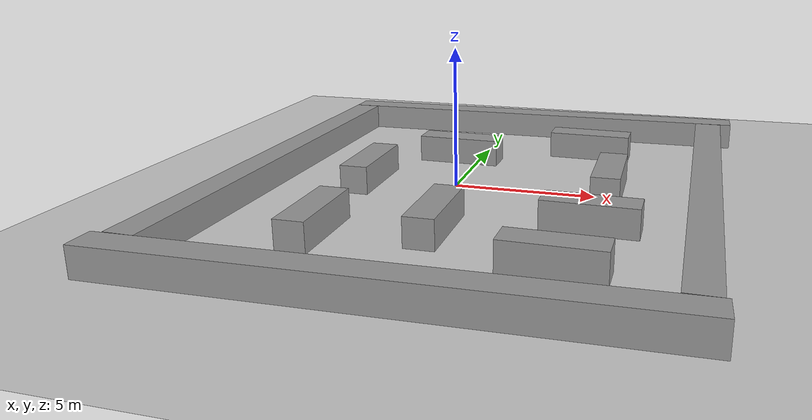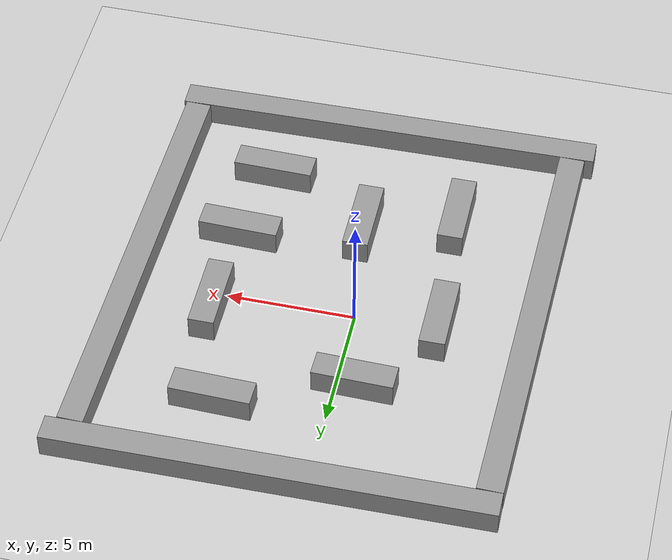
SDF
<sdf version="1.7">
 <world name="default">
  <light name="sun" type="directional">
   <pose>0 0 10 0 -0 0</pose>
   <diffuse>0.8 0.8 0.8 1</diffuse>
   <specular>0.2 0.2 0.2 1</specular>
   <attenuation>
    <range>1000</range>
    <constant>0.9</constant>
    <linear>0.01</linear>
    <quadratic>0.001</quadratic>
   </attenuation>
   <direction>-0.5 0.1 -0.9</direction>
   <spot><inner_angle>0</inner_angle><outer_angle>0</outer_angle><falloff>0</falloff></spot>
  </light>
  <model name="ground_plane">
   <static>1</static>
   <link name="link">
    <collision name="collision">
     <geometry><plane><normal>0 0 1</normal><size>100 100</size></plane></geometry>
     <surface><friction><ode><mu>100</mu><mu2>50</mu2></ode></friction></surface>
    </collision>
    <visual name="visual">
     <cast_shadows>0</cast_shadows>
     <geometry><plane><normal>0 0 1</normal><size>100 100</size></plane></geometry>
     <material>
      <script><uri>file://media/materials/scripts/gazebo.material</uri><name>Gazebo/Grey</name></script>
     </material>
    </visual>
   </link>
  </model>
  <gravity>0 0 -9.8</gravity>
  <magnetic_field>6e-06 2.3e-05 -4.2e-05</magnetic_field>
  <atmosphere type="adiabatic"/>
  <physics type="ode">
   <max_step_size>0.001</max_step_size>
   <real_time_factor>1</real_time_factor>
   <real_time_update_rate>1000</real_time_update_rate>
  </physics>
  <scene><ambient>0.4 0.4 0.4 1</ambient><background>0.7 0.7 0.7 1</background><shadows>1</shadows></scene>
  <audio><device>default</device></audio>
  <spherical_coordinates>
   <surface_model>EARTH_WGS84</surface_model>
   <latitude_deg>0</latitude_deg>
   <longitude_deg>0</longitude_deg>
   <elevation>0</elevation>
   <heading_deg>0</heading_deg>
  </spherical_coordinates>
  <model name="unit_box">
   <link name="link">
    <inertial>
     <mass>132449</mass>
     <inertia>
      <ixx>3.13722e+06</ixx>
      <ixy>0</ixy>
      <ixz>0</ixz>
      <iyy>22074.8</iyy>
      <iyz>0</iyz>
      <izz>3.13722e+06</izz>
     </inertia>
    </inertial>
    <pose>-0 0 0.995364 0.042784 -0 0</pose>
    <visual name="visual">
     <geometry><box><size>1 16.8296 1</size></box></geometry>
     <material>
      <script><name>Gazebo/Grey</name><uri>file://media/materials/scripts/gazebo.material</uri></script>
      <shader type="pixel"><normal_map>__default__</normal_map></shader>
     </material>
    </visual>
    <collision name="collision">
     <geometry><box><size>1 16.8296 1</size></box></geometry>
     <surface>
      <friction>
       <ode><mu>1</mu><mu2>1</mu2><fdir1>0 0 0</fdir1><slip1>0</slip1><slip2>0</slip2></ode>
       <torsional>
        <coefficient>1</coefficient>
        <patch_radius>0</patch_radius>
        <surface_radius>0</surface_radius>
        <use_patch_radius>1</use_patch_radius>
        <ode><slip>0</slip></ode>
       </torsional>
      </friction>
      <bounce><restitution_coefficient>0</restitution_coefficient><threshold>1e+06</threshold></bounce>
      <contact>
       <collide_without_contact>0</collide_without_contact>
       <collide_without_contact_bitmask>1</collide_without_contact_bitmask>
       <collide_bitmask>1</collide_bitmask>
       <ode>
        <soft_cfm>0</soft_cfm>
        <soft_erp>0.2</soft_erp>
        <kp>1e+13</kp>
        <kd>1</kd>
        <max_vel>0.01</max_vel>
        <min_depth>0</min_depth>
       </ode>
       <bullet>
        <split_impulse>1</split_impulse>
        <split_impulse_penetration_threshold>-0.01</split_impulse_penetration_threshold>
        <soft_cfm>0</soft_cfm>
        <soft_erp>0.2</soft_erp>
        <kp>1e+13</kp>
        <kd>1</kd>
       </bullet>
      </contact>
     </surface>
    </collision>
   </link>
   <static>0</static>
   <pose>-6.7218 -0.864082 -0.494454 -0.042784 -0 -0.019598</pose>
  </model>
  <model name="unit_box_clone">
   <link name="link">
    <inertial>
     <mass>132449</mass>
     <inertia>
      <ixx>3.13722e+06</ixx>
      <ixy>0</ixy>
      <ixz>0</ixz>
      <iyy>22074.8</iyy>
      <iyz>0</iyz>
      <izz>3.13722e+06</izz>
     </inertia>
    </inertial>
    <pose>-0 0 0.995364 0.042784 -0 0</pose>
    <visual name="visual">
     <geometry><box><size>1 16.8296 1</size></box></geometry>
     <material>
      <script><name>Gazebo/Grey</name><uri>file://media/materials/scripts/gazebo.material</uri></script>
      <shader type="pixel"><normal_map>__default__</normal_map></shader>
     </material>
    </visual>
    <collision name="collision">
     <geometry><box><size>1 16.8296 1</size></box></geometry>
     <surface>
      <friction>
       <ode><mu>1</mu><mu2>1</mu2><fdir1>0 0 0</fdir1><slip1>0</slip1><slip2>0</slip2></ode>
       <torsional>
        <coefficient>1</coefficient>
        <patch_radius>0</patch_radius>
        <surface_radius>0</surface_radius>
        <use_patch_radius>1</use_patch_radius>
        <ode><slip>0</slip></ode>
       </torsional>
      </friction>
      <bounce><restitution_coefficient>0</restitution_coefficient><threshold>1e+06</threshold></bounce>
      <contact>
       <collide_without_contact>0</collide_without_contact>
       <collide_without_contact_bitmask>1</collide_without_contact_bitmask>
       <collide_bitmask>1</collide_bitmask>
       <ode>
        <soft_cfm>0</soft_cfm>
        <soft_erp>0.2</soft_erp>
        <kp>1e+13</kp>
        <kd>1</kd>
        <max_vel>0.01</max_vel>
        <min_depth>0</min_depth>
       </ode>
       <bullet>
        <split_impulse>1</split_impulse>
        <split_impulse_penetration_threshold>-0.01</split_impulse_penetration_threshold>
        <soft_cfm>0</soft_cfm>
        <soft_erp>0.2</soft_erp>
        <kp>1e+13</kp>
        <kd>1</kd>
       </bullet>
      </contact>
     </surface>
    </collision>
   </link>
   <static>0</static>
   <pose>8.67066 -0.649052 -0.494454 -0.042784 -0 -0.021843</pose>
  </model>
  <model name="unit_box_clone_clone">
   <link name="link">
    <inertial>
     <mass>132449</mass>
     <inertia>
      <ixx>3.13722e+06</ixx>
      <ixy>0</ixy>
      <ixz>0</ixz>
      <iyy>22074.8</iyy>
      <iyz>0</iyz>
      <izz>3.13722e+06</izz>
     </inertia>
    </inertial>
    <pose>-0 0 0.995364 0.042784 -0 0</pose>
    <visual name="visual">
     <geometry><box><size>1 16.8296 1</size></box></geometry>
     <material>
      <script><name>Gazebo/Grey</name><uri>file://media/materials/scripts/gazebo.material</uri></script>
      <shader type="pixel"><normal_map>__default__</normal_map></shader>
     </material>
    </visual>
    <collision name="collision">
     <geometry><box><size>1 16.8296 1</size></box></geometry>
     <surface>
      <friction>
       <ode><mu>1</mu><mu2>1</mu2><fdir1>0 0 0</fdir1><slip1>0</slip1><slip2>0</slip2></ode>
       <torsional>
        <coefficient>1</coefficient>
        <patch_radius>0</patch_radius>
        <surface_radius>0</surface_radius>
        <use_patch_radius>1</use_patch_radius>
        <ode><slip>0</slip></ode>
       </torsional>
      </friction>
      <bounce><restitution_coefficient>0</restitution_coefficient><threshold>1e+06</threshold></bounce>
      <contact>
       <collide_without_contact>0</collide_without_contact>
       <collide_without_contact_bitmask>1</collide_without_contact_bitmask>
       <collide_bitmask>1</collide_bitmask>
       <ode>
        <soft_cfm>0</soft_cfm>
        <soft_erp>0.2</soft_erp>
        <kp>1e+13</kp>
        <kd>1</kd>
        <max_vel>0.01</max_vel>
        <min_depth>0</min_depth>
       </ode>
       <bullet>
        <split_impulse>1</split_impulse>
        <split_impulse_penetration_threshold>-0.01</split_impulse_penetration_threshold>
        <soft_cfm>0</soft_cfm>
        <soft_erp>0.2</soft_erp>
        <kp>1e+13</kp>
        <kd>1</kd>
       </bullet>
      </contact>
     </surface>
    </collision>
   </link>
   <static>0</static>
   <pose>1.39882 8.21989 -0.494454 -0.042784 0 1.58481</pose>
  </model>
  <model name="unit_box_clone_clone_clone">
   <link name="link">
    <inertial>
     <mass>132449</mass>
     <inertia>
      <ixx>3.13722e+06</ixx>
      <ixy>0</ixy>
      <ixz>0</ixz>
      <iyy>22074.8</iyy>
      <iyz>0</iyz>
      <izz>3.13722e+06</izz>
     </inertia>
    </inertial>
    <pose>-0 0 0.995364 0.042784 -0 0</pose>
    <visual name="visual">
     <geometry><box><size>1 16.8296 1</size></box></geometry>
     <material>
      <script><name>Gazebo/Grey</name><uri>file://media/materials/scripts/gazebo.material</uri></script>
      <shader type="pixel"><normal_map>__default__</normal_map></shader>
     </material>
    </visual>
    <collision name="collision">
     <geometry><box><size>1 16.8296 1</size></box></geometry>
     <surface>
      <friction>
       <ode><mu>1</mu><mu2>1</mu2><fdir1>0 0 0</fdir1><slip1>0</slip1><slip2>0</slip2></ode>
       <torsional>
        <coefficient>1</coefficient>
        <patch_radius>0</patch_radius>
        <surface_radius>0</surface_radius>
        <use_patch_radius>1</use_patch_radius>
        <ode><slip>0</slip></ode>
       </torsional>
      </friction>
      <bounce><restitution_coefficient>0</restitution_coefficient><threshold>1e+06</threshold></bounce>
      <contact>
       <collide_without_contact>0</collide_without_contact>
       <collide_without_contact_bitmask>1</collide_without_contact_bitmask>
       <collide_bitmask>1</collide_bitmask>
       <ode>
        <soft_cfm>0</soft_cfm>
        <soft_erp>0.2</soft_erp>
        <kp>1e+13</kp>
        <kd>1</kd>
        <max_vel>0.01</max_vel>
        <min_depth>0</min_depth>
       </ode>
       <bullet>
        <split_impulse>1</split_impulse>
        <split_impulse_penetration_threshold>-0.01</split_impulse_penetration_threshold>
        <soft_cfm>0</soft_cfm>
        <soft_erp>0.2</soft_erp>
        <kp>1e+13</kp>
        <kd>1</kd>
       </bullet>
      </contact>
     </surface>
    </collision>
   </link>
   <static>0</static>
   <pose>0.730125 -9.64537 -0.494454 -0.042784 -0 1.58474</pose>
  </model>
  <model name="unit_box_0">
   <pose>-2.89534 -5.59014 0.499784 0.000138 -0 0</pose>
   <link name="link">
    <inertial>
     <mass>1</mass>
     <inertia>
      <ixx>0.166667</ixx>
      <ixy>0</ixy>
      <ixz>0</ixz>
      <iyy>0.166667</iyy>
      <iyz>0</iyz>
      <izz>0.166667</izz>
     </inertia>
    </inertial>
    <collision name="collision"><geometry><box><size>1 3.12054 1</size></box></geometry></collision>
    <visual name="visual">
     <geometry><box><size>1 3.12054 1</size></box></geometry>
     <material>
      <script><name>Gazebo/Grey</name><uri>file://media/materials/scripts/gazebo.material</uri></script>
     </material>
    </visual>
   </link>
  </model>
  <model name="unit_box_0_clone">
   <pose>0.618344 -4.44366 0.5 0 1e-06 -2.5e-05</pose>
   <link name="link">
    <inertial>
     <mass>1</mass>
     <inertia>
      <ixx>0.166667</ixx>
      <ixy>0</ixy>
      <ixz>0</ixz>
      <iyy>0.166667</iyy>
      <iyz>0</iyz>
      <izz>0.166667</izz>
     </inertia>
    </inertial>
    <collision name="collision"><geometry><box><size>1 3.12055 1</size></box></geometry></collision>
    <visual name="visual">
     <geometry><box><size>1 3.12055 1</size></box></geometry>
     <material>
      <script><name>Gazebo/Grey</name><uri>file://media/materials/scripts/gazebo.material</uri></script>
     </material>
    </visual>
   </link>
  </model>
  <model name="unit_box_0_clone_clone">
   <pose>5.43076 0.690802 0.499996 -1e-06 5e-06 5.6e-05</pose>
   <link name="link">
    <inertial>
     <mass>1</mass>
     <inertia>
      <ixx>0.166667</ixx>
      <ixy>0</ixy>
      <ixz>0</ixz>
      <iyy>0.166667</iyy>
      <iyz>0</iyz>
      <izz>0.166667</izz>
     </inertia>
    </inertial>
    <collision name="collision"><geometry><box><size>1 3.12055 1</size></box></geometry></collision>
    <visual name="visual">
     <geometry><box><size>1 3.12055 1</size></box></geometry>
     <material>
      <script><name>Gazebo/Grey</name><uri>file://media/materials/scripts/gazebo.material</uri></script>
     </material>
    </visual>
   </link>
  </model>
  <model name="unit_box_0_clone_clone_clone">
   <pose>-0.725425 3.28233 0.499784 -0.000138 -0 1.55097</pose>
   <link name="link">
    <inertial>
     <mass>1</mass>
     <inertia>
      <ixx>0.166667</ixx>
      <ixy>0</ixy>
      <ixz>0</ixz>
      <iyy>0.166667</iyy>
      <iyz>0</iyz>
      <izz>0.166667</izz>
     </inertia>
    </inertial>
    <collision name="collision"><geometry><box><size>1 3.12055 1</size></box></geometry></collision>
    <visual name="visual">
     <geometry><box><size>1 3.12055 1</size></box></geometry>
     <material>
      <script><name>Gazebo/Grey</name><uri>file://media/materials/scripts/gazebo.material</uri></script>
     </material>
    </visual>
   </link>
  </model>
  <model name="unit_box_0_clone_clone_clone_clone">
   <pose>-3.24055 -0.201177 0.5 0 -1e-06 3e-05</pose>
   <link name="link">
    <inertial>
     <mass>1</mass>
     <inertia>
      <ixx>0.166667</ixx>
      <ixy>0</ixy>
      <ixz>0</ixz>
      <iyy>0.166667</iyy>
      <iyz>0</iyz>
      <izz>0.166667</izz>
     </inertia>
    </inertial>
    <collision name="collision"><geometry><box><size>1 3.12055 1</size></box></geometry></collision>
    <visual name="visual">
     <geometry><box><size>1 3.12055 1</size></box></geometry>
     <material>
      <script><name>Gazebo/Grey</name><uri>file://media/materials/scripts/gazebo.material</uri></script>
     </material>
    </visual>
   </link>
  </model>
  <model name="unit_box_0_clone_clone_clone_clone_0_clone">
   <pose>5.24354 -3.12736 0.5 0 1e-06 1.54439</pose>
   <link name="link">
    <inertial>
     <mass>1</mass>
     <inertia>
      <ixx>0.166667</ixx>
      <ixy>0</ixy>
      <ixz>0</ixz>
      <iyy>0.166667</iyy>
      <iyz>0</iyz>
      <izz>0.166667</izz>
     </inertia>
    </inertial>
    <collision name="collision"><geometry><box><size>1 3.12055 1</size></box></geometry></collision>
    <visual name="visual">
     <geometry><box><size>1 3.12055 1</size></box></geometry>
     <material>
      <script><name>Gazebo/Grey</name><uri>file://media/materials/scripts/gazebo.material</uri></script>
     </material>
    </visual>
   </link>
  </model>
  <model name="unit_box_0_clone_clone_clone_clone_0_clone_clone">
   <pose>4.66934 -6.55778 0.499784 -0.000138 -0 1.54861</pose>
   <link name="link">
    <inertial>
     <mass>1</mass>
     <inertia>
      <ixx>0.166667</ixx>
      <ixy>0</ixy>
      <ixz>0</ixz>
      <iyy>0.166667</iyy>
      <iyz>0</iyz>
      <izz>0.166667</izz>
     </inertia>
    </inertial>
    <collision name="collision"><geometry><box><size>1 3.12055 1</size></box></geometry></collision>
    <visual name="visual">
     <geometry><box><size>1 3.12055 1</size></box></geometry>
     <material>
      <script><name>Gazebo/Grey</name><uri>file://media/materials/scripts/gazebo.material</uri></script>
     </material>
    </visual>
   </link>
  </model>
  <model name="unit_box_0_clone_clone_clone_clone_0_clone_clone_clone">
   <pose>4.22448 5.14553 0.5 0 1e-06 1.54581</pose>
   <link name="link">
    <inertial>
     <mass>1</mass>
     <inertia>
      <ixx>0.166667</ixx>
      <ixy>0</ixy>
      <ixz>0</ixz>
      <iyy>0.166667</iyy>
      <iyz>0</iyz>
      <izz>0.166667</izz>
     </inertia>
    </inertial>
    <collision name="collision"><geometry><box><size>1 3.12055 1</size></box></geometry></collision>
    <visual name="visual">
     <geometry><box><size>1 3.12055 1</size></box></geometry>
     <material>
      <script><name>Gazebo/Grey</name><uri>file://media/materials/scripts/gazebo.material</uri></script>
     </material>
    </visual>
   </link>
  </model>
 </world>
</sdf>
